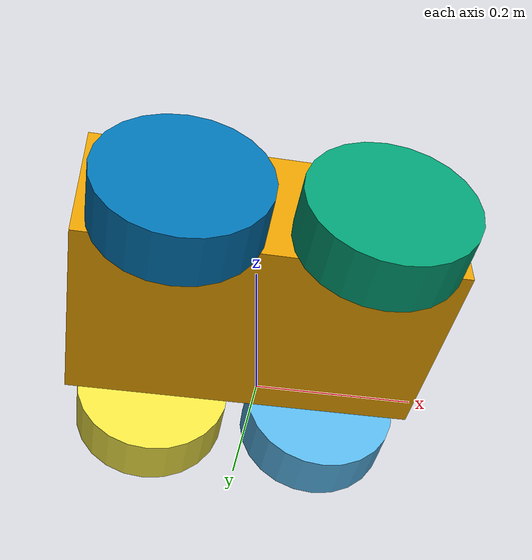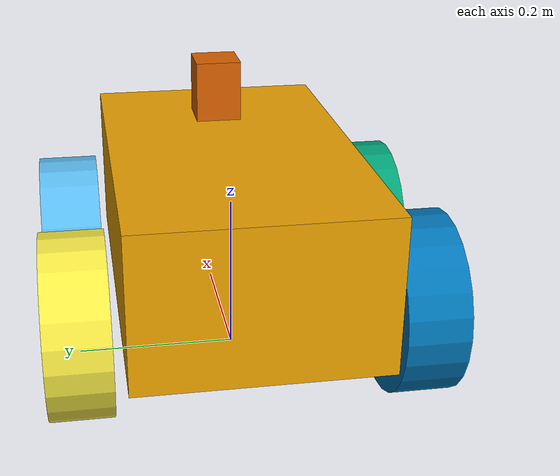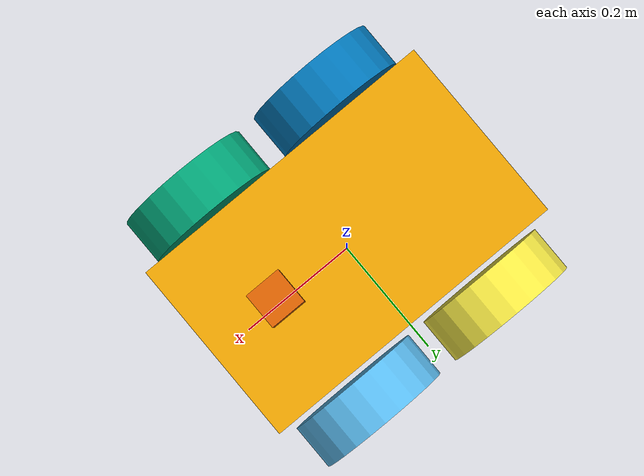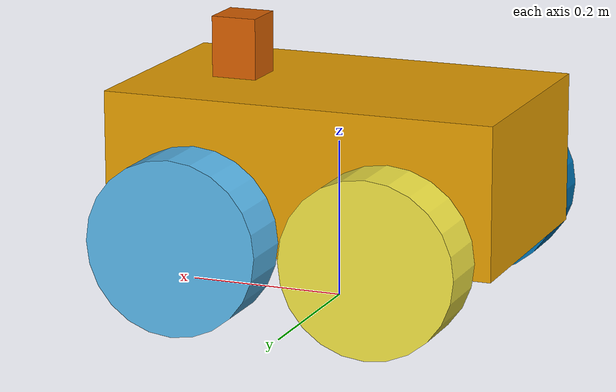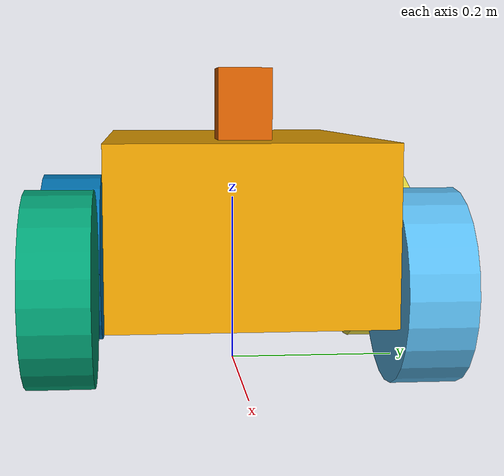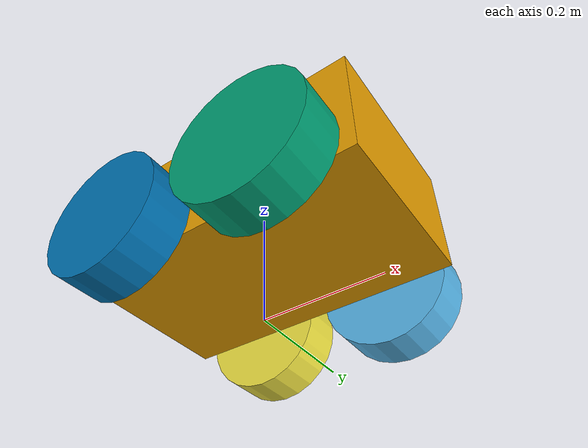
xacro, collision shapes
<?xml version="1.0"?>

<robot
  xmlns:sensor="http://playerstage.sourceforge.net/gazebo/xmlschema/#sensor"
  xmlns:controller="http://playerstage.sourceforge.net/gazebo/xmlschema/#controller"
  xmlns:interface="http://playerstage.sourceforge.net/gazebo/xmlschema/#interface"
  xmlns:xacro="http://ros.org/wiki/xacro"
   name="pioneer3at_rc2016">

  <xacro:include filename="$(find robot_description)/urdf/pioneer3at_body.xacro"/>
  <xacro:include filename="$(find robot_description)/urdf/hokuyo_utm30lx.urdf.xacro"/>

  <xacro:hokuyo_utm30lx name="hokuyo" parent="base_link" ros_topic="hokuyo" update_rate="30" ray_count="1040" min_angle="130" max_angle="-130" >
    <origin xyz="0.13 0 0.32" rpy="0 0 0"/>
  </xacro:hokuyo_utm30lx>

</robot>

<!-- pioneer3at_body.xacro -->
<robot xmlns:sensor="http://playerstage.sourceforge.net/gazebo/xmlschema/#sensor"
  xmlns:controller="http://playerstage.sourceforge.net/gazebo/xmlschema/#controller"
  xmlns:interface="http://playerstage.sourceforge.net/gazebo/xmlschema/#interface"
  xmlns:xacro="http://ros.org/wiki/xacro"
  name="pioneer3at_rc2016"
  >
  <arg name="robot_name" default="child1"/>
  <!-- Chassis -->
  <link name="base_link">
    <inertial>
      <mass value="14.0"/>
      <origin xyz="0 0 0.177"/>
      <inertia ixx="0.14711667" ixy="0.0" ixz="0.0"
        iyy="0.334951167" iyz="0.0"
        izz="0.3978345"/>
    </inertial>
    <visual name="base_visual">
      <origin xyz="0 0 0.18" rpy="0 0 0"/>
      <geometry name="pioneer_geom">
        <mesh filename="package://robot_description/meshes/p3at_meshes/chassis.dae"/>
      </geometry>
    </visual>
    <collision>
      <origin xyz="0 0 0.18" rpy="0 0 0"/>
      <geometry>
        <box size="0.501 0.3 0.19"/>
      </geometry>
    </collision>
  </link>

  <link name="p3at_front_left_wheel">
    <inertial>
      <mass value="1.5"/>
      <origin xyz="0 0 0"/>
      <inertia ixx="0.005240625" ixy="0" ixz="0"
        iyy="0.005240625" iyz="0" izz="0.009075"/>
    </inertial>
    <visual name="visual">
      <origin xyz="0 0 0" rpy="0 0 0"/>
      <geometry name="geom">
        <mesh filename="package://robot_description/meshes/p3at_meshes/wheel.dae"/>
      </geometry>
    </visual>
    <collision>
      <origin xyz="0 0 0" rpy="0 0 0"/>
      <geometry>
        <cylinder radius="0.110" length="0.075"/>
      </geometry>
    </collision>
  </link>

  <joint name="p3at_front_left_wheel_joint" type="continuous">
    <axis xyz="0 0 -1"/>
    <limit effort="100" velocity="100" />
    <joint_properties damping="0.7"/>
    <origin xyz="0.125 0.2010 0.11" rpy="1.5707 0 0"/>
    <parent link="base_link"/>
    <child link="p3at_front_left_wheel"/>
  </joint>

  <link name="p3at_front_right_wheel">
    <inertial>
      <mass value="1.5"/>
      <origin xyz="0 0 0"/>
      <inertia ixx="0.005240625" ixy="0" ixz="0"
        iyy="0.005240625" iyz="0" izz="0.009075"/>
    </inertial>
    <visual name="visual">
      <origin xyz="0 0 0" rpy="0 0 0"/>
      <geometry name="geom">
        <mesh filename="package://robot_description/meshes/p3at_meshes/wheel.dae"/>
      </geometry>
    </visual>
    <collision>
      <origin xyz="0 0 0" rpy="0 0 0"/>
      <geometry>
        <cylinder radius="0.110" length="0.075"/>
      </geometry>
    </collision>
  </link>

  <joint name="p3at_front_right_wheel_joint" type="continuous">
    <axis xyz="0 0 -1"/>
    <limit effort="100" velocity="100" />
    <joint_properties damping="0.7"/>
    <origin xyz="0.125 -0.2010 0.11" rpy="1.5707 0 0"/>
    <parent link="base_link"/>
    <child link="p3at_front_right_wheel"/>
  </joint>

  <link name="p3at_rear_left_wheel">
    <inertial>
      <mass value="1.5"/>
      <origin xyz="0 0 0"/>
      <inertia ixx="0.005240625" ixy="0" ixz="0"
        iyy="0.005240625" iyz="0" izz="0.009075"/>
    </inertial>
    <visual name="visual">
      <origin xyz="0 0 0" rpy="0 0 0"/>
      <geometry name="geom">
        <mesh filename="package://robot_description/meshes/p3at_meshes/wheel.dae"/>
      </geometry>
    </visual>
    <collision>
      <origin xyz="0 0 0" rpy="0 0 0"/>
      <geometry>
        <cylinder radius="0.110" length="0.075"/>
      </geometry>
    </collision>
  </link>

  <joint name="p3at_rear_left_wheel_joint" type="continuous">
    <axis xyz="0 0 -1"/>
    <limit effort="100" velocity="100" />
    <joint_properties damping="0.7"/>
    <origin xyz="-0.125 0.2010 0.11" rpy="1.5707 0 0"/>
    <parent link="base_link"/>
    <child link="p3at_rear_left_wheel"/>
  </joint>

  <link name="p3at_rear_right_wheel">
    <inertial>
      <mass value="1.5"/>
      <origin xyz="0 0 0"/>
      <inertia ixx="0.005240625" ixy="0" ixz="0"
        iyy="0.005240625" iyz="0" izz="0.009075"/>
    </inertial>
    <visual name="visual">
      <origin xyz="0 0 0" rpy="0 0 0"/>
      <geometry name="geom">
        <mesh filename="package://robot_description/meshes/p3at_meshes/wheel.dae"/>
      </geometry>
    </visual>
    <collision>
      <origin xyz="0 0 0" rpy="0 0 0"/>
      <geometry>
        <cylinder radius="0.110" length="0.075"/>
      </geometry>
    </collision>
  </link>

  <joint name="p3at_rear_right_wheel_joint" type="continuous">
    <axis xyz="0 0 -1"/>
    <limit effort="100" velocity="100" />
    <joint_properties damping="0.7"/>
    <origin xyz="-0.125 -0.2010 0.11" rpy="1.5707 0 0"/>
    <parent link="base_link"/>
    <child link="p3at_rear_right_wheel"/>
  </joint>

  <gazebo>
    <plugin name="skid_steer_drive_controller" filename="libgazebo_ros_skid_steer_drive.so">
      <updateRate>100.0</updateRate>
      <leftFrontJoint>p3at_front_left_wheel_joint</leftFrontJoint>
      <rightFrontJoint>p3at_front_right_wheel_joint</rightFrontJoint>
      <leftRearJoint>p3at_rear_left_wheel_joint</leftRearJoint>
      <rightRearJoint>p3at_rear_right_wheel_joint</rightRearJoint>
      <wheelSeparation>0.4</wheelSeparation>
      <wheelDiameter>0.215</wheelDiameter>
      <robotBaseFrame>base_link</robotBaseFrame>
      <torque>200</torque>
      <commandTopic>cmd_vel</commandTopic>
      <odometryTopic>odom</odometryTopic>
      <odometryFrame>odom</odometryFrame>
      <broadcastTF>true</broadcastTF>
    </plugin>
  </gazebo>

</robot>

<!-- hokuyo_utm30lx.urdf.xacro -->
<robot xmlns:xacro="http://ros.org/wiki/xacro"  >
    <xacro:property name="M_PI" value="3.1415926535897931" />

    <xacro:macro name="hokuyo_utm30lx" params="name parent *origin ros_topic update_rate ray_count min_angle max_angle">
      <joint name="${name}_joint" type="fixed">
        <xacro:insert_block name="origin" />
        <parent link="${parent}"/>
        <child link="${name}_frame"/>
      </joint>

      <link name="${name}_frame">
        <inertial>
          <mass value="0.270" />
          <origin xyz="0 0 0" rpy="0 0 0" />
          <inertia ixx="2.632e-4" ixy="0" ixz="0" iyy="2.632e-4" iyz="0" izz="1.62e-4" />
        </inertial>
        <visual>
          <origin xyz="0 0 0" rpy="0 0 0" />
          <geometry>
          <mesh filename="package://robot_description/meshes/hokuyo_utm30lx/hokuyo_utm_30lx$(optenv TEST_SELF_FILTER).dae"/>
        </geometry>
        </visual>
        <collision>
          <origin xyz="0 0 -0.0115" rpy="0 0 0" />
          <geometry>
          <box size="0.058 0.058 0.087" />
        </geometry>
        </collision>
      </link>

      <gazebo reference="${name}_frame">
        <sensor type="ray" name="${name}">
          <always_on>true</always_on>
          <update_rate>${update_rate}</update_rate>
          <pose>0 0 0 0 0 0</pose>
          <visualize>false</visualize>
          <ray>
            <scan>
              <horizontal>
                <samples>${ray_count}</samples>
                <resolution>1</resolution>
                <min_angle>${min_angle * M_PI/180}</min_angle>
                <max_angle>${max_angle * M_PI/180}</max_angle>
              </horizontal>
            </scan>
            <range>
              <min>0.08</min>
              <max>30.0</max>
              <resolution>0.01</resolution>
            </range>
          </ray>
          <plugin name="gazebo_ros_${name}_controller" filename="libgazebo_ros_laser.so">
            <gaussianNoise>0.005</gaussianNoise>
            <alwaysOn>true</alwaysOn>
            <updateRate>${update_rate}</updateRate>
            <topicName>${ros_topic}</topicName>
            <frameName>${name}_frame</frameName>
          </plugin>
        </sensor>
      </gazebo>

    </xacro:macro>
  </robot>
